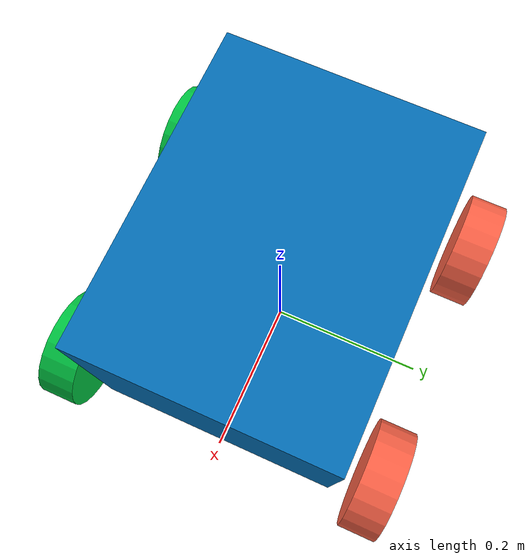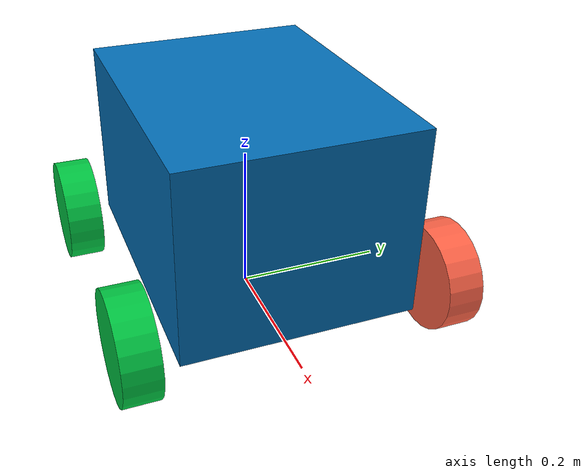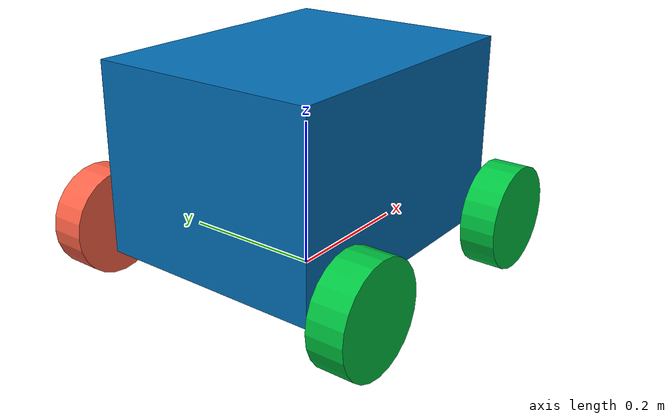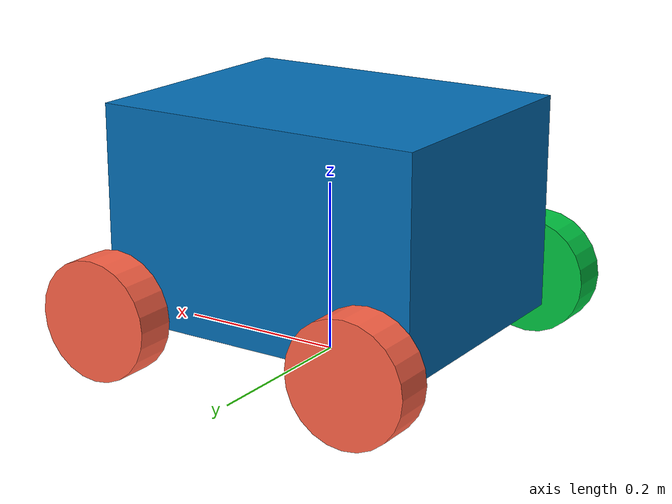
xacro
<?xml version="1.0"?>

<robot xmlns:xacro="http://www.ros.org/wiki/xacro" name = "ntarobot">
    <!-- Seccion de importe de archivos -->
    <!-- Propiedades de materiales y medida de las piezas -->
    <xacro:include filename="$(find diseno_ntarobot)/urdf/ntarobot_matprop.xacro"/>
    <!-- Importe de valores de inercia de las piezas (Falta calcular)-->
    <xacro:include filename="$(find diseno_ntarobot)/urdf/ntarobot_intertial.xacro"/>
    <!-- Fin de importe de archivos -->

    <!-- Inicio de creacion de propiedades nuevas -->
    <xacro:property name="chassis_mass" value="1.0"/>
    <xacro:property name="wheel_mass" value="0.3"/>
    <!-- Fin de creacion de propiedades -->

    <!-- Seccion de creacion de modelo -->
    <!-- Primero va creada la seccion del footprint del robot, como la base de la estructura entendiendo que es una estructura cuadrada -->
    <link name="base_footprint"/>

    <!-- Seccion de estructura y figuras del robot -->
    <!-- Primera seccion de la caja principal del robot -->
    <link name="base_link">
        <!-- Especificaciones visuales de la primera forma -->
        <visual>
            <!-- Posicion inicial de la figura -->
            <!-- En este caso el valor de 0.0225, es la diferencia entre diferencias del suelo y la altura de la caja-->
            <origin xyz="0 0 ${chassis_width/2 - 0.0225}" rpy="0.0 0.0 0.0"/>
            <!-- Estructura geometrica de la figura en cuestion -->
            <geometry>
                <box size="${chassis_length} ${chassis_height} ${chassis_width}"/>
            </geometry>
            <!-- Control del tipo de material de la carcaza general -->
            <material name="blue"/>
        </visual>
        <!-- Especificaciones de inercia para cada pieza-->
        <collision>
            <origin xyz="0 0 ${chassis_width/2 - 0.0225}" rpy="0.0 0.0 0.0"/>
            <geometry>
                <box size="${chassis_length} ${chassis_height} ${chassis_width}"/>
            </geometry>
        </collision>
        <!-- Calculo de la inercia con las funciones creadas -->
        <xacro:inertial_box mass="${chassis_mass}" x="${chassis_length}" y="${chassis_height}" z="${chassis_width}">
            <origin xyz="0 0 ${chassis_width/2 - 0.0225}" rpy="0.0 0.0 0.0"/>
        </xacro:inertial_box>
    </link>

    <!-- Seccion de creacion de articulacion de la base del robot -->
    <joint name="base_joint" type="fixed">
        <!-- Seccion de relacion jerarquica -->
        <parent link="base_footprint"/>
        <child link="base_link"/>
        <!-- Seccion de origen del chassis del robot -->
        <!-- En este caso el valor de 0.0695, corresponde al valor de diferencia de la caja principal con respecto al suelo-->
        <origin xyz="0.0 0.0 0.0695" rpy="0.0 0.0 0.0"/>
    </joint>

    <!-- Sigue la estructura de las llandas del robot -->
    <!-- Primero disenamos la llanta posterior derecha -->
    <link name="wheel_front_right_link">
        <visual>
            <!-- Corresponde al ppunto de inicio de la rueda -->
            <origin xyz="0.0 0.0 0.0" rpy="1.57 0.0 0.0"/>
            <geometry>
                <!-- Corresponde a las dimensiones precisas de la rueda -->
                <cylinder radius="${wheel_radius}" length="${wheel_thickness}"/>
            </geometry>
            <material name="green"/>
        </visual>
        <!-- Seccion de calculo de colisiiones -->
        <collision>
            <origin xyz="0.0 0.0 0.0" rpy="1.57 0.0 0.0"/>
            <geometry>
                <cylinder radius="${wheel_radius}" length="${wheel_thickness}"/>
            </geometry>
        </collision>
        <!-- Seccion de calculo de inercia -->
        <xacro:inertial_cylinder mass ="${wheel_mass}" length="${wheel_thickness}" radius="${wheel_radius}">
            <origin xyz="0.0 0.0 0.0" rpy="1.57 0.0 0.0"/>
        </xacro:inertial_cylinder>
    </link>

    <!-- Sigue la seccion del joint de la rueda frontal -->
    <joint name="wheel_front_right_joint" type="continuous">
        <!-- Relacion de jerarquia -->
        <parent link="base_link"/>
        <child link="wheel_front_right_link"/>
        <!-- Posicionamiento incial de las ruedas -->
        <axis xyz="0.0 1.0 0.0"/>
        <origin xyz="0.163 -0.2025 0.0" rpy="0.0 0.0 0.0"/>
        <!-- Establece la relaccion de mimica de la articulacion -->
    </joint>

    <!-- Seguido de la llanda trasera derecha, de tal manera que esta este conectada a la derecha posterior -->
    <link name="wheel_back_right_link">
        <visual>
            <!-- Corresponde al ppunto de inicio de la rueda -->
            <origin xyz="0.0 0.0 0.0" rpy="1.57 0.0 0.0"/>
            <geometry>
                <!-- Corresponde a las dimensiones precisas de la rueda -->
                <cylinder radius="${wheel_radius}" length="${wheel_thickness}"/>
            </geometry>
            <material name="green"/>
        </visual>
        <!-- Seccion de calculo de colisiiones -->
        <collision>
            <origin xyz="0.0 0.0 0.0" rpy="1.57 0.0 0.0"/>
            <geometry>
                <cylinder radius="${wheel_radius}" length="${wheel_thickness}"/>
            </geometry>
        </collision>
        <!-- Seccion de calculo de inercia -->
        <xacro:inertial_cylinder mass ="${wheel_mass}" length="${wheel_thickness}" radius="${wheel_radius}">
            <origin xyz="0.0 0.0 0.0" rpy="1.57 0.0 0.0"/>
        </xacro:inertial_cylinder>
    </link>

    <!-- Sigue la seccion del joint de la rueda frontal -->
    <joint name="wheel_back_right_joint" type="continuous">
        <!-- Relacion de jerarquia -->
        <parent link="base_link"/>
        <child link="wheel_back_right_link"/>
        <!-- Posicionamiento incial de las ruedas -->
        <axis xyz="0.0 1.0 0.0"/>
        <origin xyz="-0.163 -0.2025 0.0" rpy="0.0 0.0 0.0"/>
    </joint>

    <!-- Ahora el posicionamiento de las ruedas de la izquierda del robot.-->
    <!-- llanta frontal izquerda -->
    <link name="wheel_front_left_link">
        <visual>
            <!-- Corresponde al ppunto de inicio de la rueda -->
            <origin xyz="0.0 0.0 0.0" rpy="-1.57 0.0 0.0"/>
            <geometry>
                <!-- Corresponde a las dimensiones precisas de la rueda -->
                <cylinder radius="${wheel_radius}" length="${wheel_thickness}"/>
            </geometry>
            <material name="red"/>
        </visual>
        <!-- Seccion de calculo de colisiiones -->
        <collision>
            <origin xyz="0.0 0.0 0.0" rpy="-1.57 0.0 0.0"/>
            <geometry>
                <cylinder radius="${wheel_radius}" length="${wheel_thickness}"/>
            </geometry>
        </collision>
        <!-- Seccion de calculo de inercia -->
        <xacro:inertial_cylinder mass ="${wheel_mass}" length="${wheel_thickness}" radius="${wheel_radius}">
            <origin xyz="0.0 0.0 0.0" rpy="-1.57 0.0 0.0"/>
        </xacro:inertial_cylinder>
    </link>

    <!-- Sigue la seccion del joint de la rueda frontal -->
    <joint name="wheel_front_left_joint" type="continuous">
        <!-- Relacion de jerarquia -->
        <parent link="base_link"/>
        <child link="wheel_front_left_link"/>
        <!-- Posicionamiento incial de las ruedas -->
        <axis xyz="0.0 1.0 0.0"/>
        <origin xyz="0.163 0.2025 0.0" rpy="0.0 0.0 0.0"/>
    </joint>

    <!-- Asi mismo creamos la rueda trasera izquierda-->
    <link name="wheel_back_left_link">
        <visual>
            <!-- Corresponde al ppunto de inicio de la rueda -->
            <origin xyz="0.0 0.0 0.0" rpy="-1.57 0.0 0.0"/>
            <geometry>
                <!-- Corresponde a las dimensiones precisas de la rueda -->
                <cylinder radius="${wheel_radius}" length="${wheel_thickness}"/>
            </geometry>
            <material name="red"/>
        </visual>
        <!-- Seccion de calculo de colisiiones -->
        <collision>
            <origin xyz="0.0 0.0 0.0" rpy="-1.57 0.0 0.0"/>
            <geometry>
                <cylinder radius="${wheel_radius}" length="${wheel_thickness}"/>
            </geometry>
        </collision>
        <!-- Seccion de calculo de inrecia -->
        <xacro:inertial_cylinder mass ="${wheel_mass}" length="${wheel_thickness}" radius="${wheel_radius}">
            <origin xyz="0.0 0.0 0.0" rpy="-1.57 0.0 0.0"/>
        </xacro:inertial_cylinder>
    </link>

    <!-- Sigue la seccion del joint de la rueda trasera -->
    <joint name="wheel_back_left_joint" type="continuous">
        <!-- Relacion de jerarquia -->
        <parent link="base_link"/>
        <child link="wheel_back_left_link"/>
        <!-- Posicionamiento incial de las ruedas -->
        <axis xyz="0.0 1.0 0.0"/>
        <origin xyz="-0.163 0.2025 0.0" rpy="0.0 0.0 0.0"/>
        <!-- Establecemos la relacion entre las 2 -->
    </joint>
</robot>

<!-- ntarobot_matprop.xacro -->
<robot xmlns:xacro="http://www.ros.org/wiki/xacro" name = "ntarobot">
    <!-- Este archivo alberga unicamente los valores de propiedades y materiales para el nucleo del robot -->

    <!-- Seccion para creacion de propiedades de links -->
    <xacro:property name="chassis_length" value="0.3920"/>
    <xacro:property name="chassis_height" value="0.3045"/>
    <xacro:property name="chassis_width" value="0.2500"/>
    <!-- Seccion de valores de medidas de ruedas -->
    <xacro:property name="wheel_radius" value="0.07"/>
    <xacro:property name="wheel_thickness" value="0.047"/>
    <xacro:property name="wheel_offset_x" value="0.226"/>
    <xacro:property name="wheel_offset_y" value="0.175"/>
    <xacro:property name="wheel_offset_z" value="0.01"/>
    <!-- Fin de seccion de propieades -->

    <!-- Seccion de colores -->
    <material name = "blue">
        <color rgba = "${3/255} ${111/255} ${183/255} 1"/>
    </material>

    <material name="black">
        <color rgba="0 0 0 1"/>
    </material>

    <material name="red">
        <color rgba="${255/255} ${99/255} ${71/255} 1"/>
    </material>

    <material name="green">
        <color rgba="${0/255} ${198/255} ${66/255} 1"/>
    </material>
    <!-- fin de seccion de colores -->
</robot>

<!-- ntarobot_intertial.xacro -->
<!-- Este documento alberga las funciones para el calculo de inercia de acuerdo a las dimensiones de cada pieza -->
<robot xmlns:xacro="http://www.ros.org/wiki/xacro" name = "ntarobot">
    <!-- Calculo de inercia para cajas, funcion para la base central del robot -->
    <xacro:macro name="inertial_box" params="mass x y z *origin">
        <inertial>
            <xacro:insert_block name="origin"/>
            <mass value="${mass}" />
            <inertia ixx="${(1/12) * mass * (y*y+z*z)}" ixy="0.0" ixz="0.0"
                    iyy="${(1/12) * mass * (x*x+z*z)}" iyz="0.0"
                    izz="${(1/12) * mass * (x*x+y*y)}" />
        </inertial>
    </xacro:macro>

    <!-- Calculo de inercia para cilindros, especificamente las ruedas del robot -->
    <xacro:macro name="inertial_cylinder" params="mass length radius *origin">
        <inertial>
            <xacro:insert_block name="origin"/>
            <mass value="${mass}" />
            <inertia ixx="${(1/12) * mass * (3*radius*radius + length*length)}" ixy="0.0" ixz="0.0"
                    iyy="${(1/12) * mass * (3*radius*radius + length*length)}" iyz="0.0"
                    izz="${(1/2) * mass * (radius*radius)}" />
        </inertial>
    </xacro:macro>
</robot>
